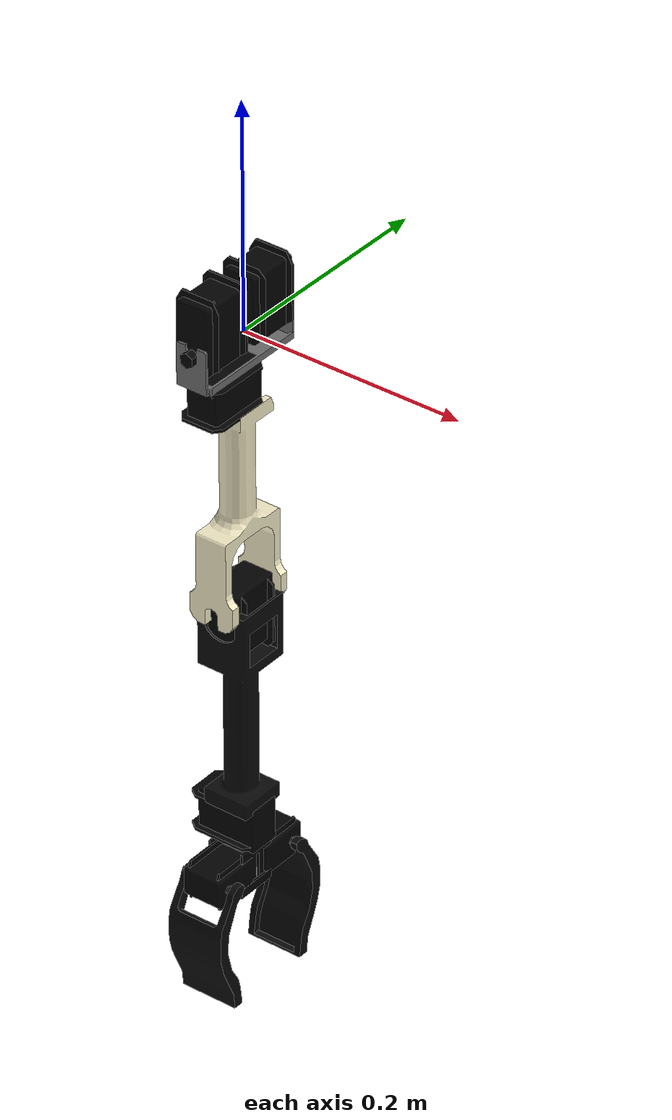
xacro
<?xml version="1.0"?>
<robot name="justina_left_arm" xmlns:xacro="http://www.ros.org/wiki/xacro">
  <!--xacro:include filename="$(find justina_description)/urdf/justina/components/justina_left_arm.gazebo"/-->

  <!-- LEFT ARM LINKS -->
  <link name="left_shoulder_link">
    <inertial>
      <origin xyz="0 -0.01 0.02" rpy = "0 0 0"/>
      <mass value="0.125"/>
      <inertia ixx="0.0015" ixy="0.0" ixz="0.0" iyy="0.002175" iyz="0.0" izz="0.003075"/>
    </inertial>

    <visual>
      <origin xyz="0 -0.01 0.02" rpy = "0 0 0"/>
      <geometry>
        <mesh filename="package://justina_description/meshes/justina/servos/Servo_Mx106-2_LowPoly.dae" scale="1 1 1"/>
      </geometry>
    </visual>
    <collision>
      <origin xyz="0 -0.01 0.02" rpy = "0 0 0"/>
      <geometry>
        <mesh filename="package://justina_description/meshes/justina/servos/Servo_Mx106-2_LowPoly.dae" scale="1 1 1"/>
      </geometry>
    </collision>
  </link>

  <link name="left_shoulder_frame">
    <inertial>
      <origin xyz="0 -0.01 0.0" rpy = "0 0 0"/>
      <mass value="0.08146"/>
      <inertia ixx="0.0000813217" ixy="0.0" ixz="0.0" iyy="0.000196" iyz="0.0" izz="0.0001282"/>
    </inertial>

    <visual>
      <origin xyz="0 -0.01 0.0" rpy="0 0 0"/>
      <geometry>
        <mesh filename="package://justina_description/meshes/justina/arm/Shoulder_Frame_LowPoly.dae" scale="1 1 1"/>
      </geometry>
    </visual>
    <collision>
      <origin xyz="0 -0.01 0.0" rpy="0 0 0"/>
      <geometry>
        <mesh filename="package://justina_description/meshes/justina/arm/Shoulder_Frame_LowPoly.dae" scale="1 1 1"/>
      </geometry>
    </collision>
  </link>

  <link name="left_arm">
    <inertial>
      <origin xyz="0 0 0" rpy = "0 0 0"/>
      <mass value="0.155"/>
      <inertia ixx="0.0015" ixy="0.0" ixz="0.0" iyy="0.002175" iyz="0.0" izz="0.003075"/>
    </inertial>

    <visual>
      <origin xyz="0 0 -0.02" rpy="0 0 1.5707"/>
      <geometry>
        <mesh filename="package://justina_description/meshes/justina/servos/Servo_Mx64_LowPoly.dae" scale="1 1 1"/>
      </geometry>
    </visual>
    <collision>
      <origin xyz="0 0 -0.02" rpy="0 0 1.5707"/>
      <geometry>
        <mesh filename="package://justina_description/meshes/justina/servos/Servo_Mx64_LowPoly.dae" scale="1 1 1"/>
      </geometry>
    </collision>

    <visual>
      <origin xyz="0 0 -0.216" rpy="0 0 1.5707"/>
      <geometry>
        <mesh filename="package://justina_description/meshes/justina/arm/Arm_LowPoly.dae" scale="1 1 1"/>
      </geometry>
    </visual>
    <collision>
      <origin xyz="0 0 -0.216" rpy="0 0 1.5707"/>
      <geometry>
        <mesh filename="package://justina_description/meshes/justina/arm/Arm_LowPoly.dae" scale="1 1 1"/>
      </geometry>
    </collision>
  </link>

  <link name="left_forearm">
    <inertial>
      <origin xyz="0 0 0" rpy = "0 0 0"/>
      <mass value="0.155"/>
      <inertia ixx="0.0015" ixy="0.0" ixz="0.0" iyy="0.002175" iyz="0.0" izz="0.003075"/>
    </inertial>

    <visual>
      <origin xyz="0 0 0" rpy="0 0 0"/>
      <geometry>
        <mesh filename="package://justina_description/meshes/justina/servos/Servo_Mx106_LowPoly.dae" scale="1 1 1"/>
      </geometry>
    </visual>
    <collision>
      <origin xyz="0 0 0" rpy="0 0 0"/>
      <geometry>
        <mesh filename="package://justina_description/meshes/justina/servos/Servo_Mx106_LowPoly.dae" scale="1 1 1"/>
      </geometry>
    </collision>

    <visual>
      <origin xyz="0 0 -0.12" rpy="0 0 0"/>
      <geometry>
        <mesh filename="package://justina_description/meshes/justina/arm/Forearm_LowPoly.dae" scale="1 1 1"/>
      </geometry>
    </visual>
    <collision>
      <origin xyz="0 0 -0.12" rpy="0 0 0"/>
      <geometry>
        <mesh filename="package://justina_description/meshes/justina/arm/Forearm_LowPoly.dae" scale="1 1 1"/>
      </geometry>
    </collision>

    <visual>
      <origin xyz="0.009 0.001 -0.21" rpy="0 0 0"/>
      <geometry>
        <mesh filename="package://justina_description/meshes/justina/servos/Servo_Mx64_LowPoly.dae" scale="1 1 1"/>
      </geometry>
    </visual>
    <collision>
      <origin xyz="0.009 0.001 -0.21" rpy="0 0 0"/>
      <geometry>
        <mesh filename="package://justina_description/meshes/justina/servos/Servo_Mx64_LowPoly.dae" scale="1 1 1"/>
      </geometry>
    </collision>
  </link>

  <link name="left_gripper_motors">
    <inertial>
      <origin xyz="0 0 0" rpy = "0 0 0"/>
      <mass value="0.155"/>
      <inertia ixx="0.0015" ixy="0.0" ixz="0.0" iyy="0.002175" iyz="0.0" izz="0.003075"/>
    </inertial>

    <visual>
      <origin xyz="0 0 0" rpy="0 0 0"/>
      <geometry>
        <mesh filename="package://justina_description/meshes/justina/servos/Servo_Mx28-2_LowPoly.dae" scale="1 1 1"/>
      </geometry>
    </visual>
    <collision>
      <origin xyz="0 0 0" rpy="0 0 0"/>
      <geometry>
        <mesh filename="package://justina_description/meshes/justina/servos/Servo_Mx28-2_LowPoly.dae" scale="1 1 1"/>
      </geometry>
    </collision>
  </link>

  <link name="left_jaw_right">
    <inertial>
      <origin xyz="0 0 0" rpy = "0 0 0"/>
      <mass value="0.155"/>
      <inertia ixx="0.0015" ixy="0.0" ixz="0.0" iyy="0.002175" iyz="0.0" izz="0.003075"/>
    </inertial>

    <visual>
      <origin xyz="0 0 0" rpy="0 0 -1.5708"/>
      <geometry>
        <mesh filename="package://justina_description/meshes/justina/arm/Gripper_Clean.dae" scale="1 1 1"/>
      </geometry>
    </visual>
    <collision>
      <origin xyz="0 0 0" rpy="0 0 -1.5708"/>
      <geometry>
        <mesh filename="package://justina_description/meshes/justina/arm/Gripper_Clean.dae" scale="1 1 1"/>
      </geometry>
    </collision>
  </link>

  <link name="left_jaw_left">
    <inertial>
      <origin xyz="0 0 0" rpy = "0 0 0"/>
      <mass value="0.155"/>
      <inertia ixx="0.0015" ixy="0.0" ixz="0.0" iyy="0.002175" iyz="0.0" izz="0.003075"/>
    </inertial>

    <visual>
      <origin xyz="0 0 0" rpy="0 0 1.5708"/>
      <geometry>
        <mesh filename="package://justina_description/meshes/justina/arm/Gripper_Clean.dae" scale="1 1 1"/>
      </geometry>
    </visual>
    <collision>
      <origin xyz="0 0 0" rpy="0 0 1.5708"/>
      <geometry>
        <mesh filename="package://justina_description/meshes/justina/arm/Gripper_Clean.dae" scale="1 1 1"/>
      </geometry>
    </collision>
  </link>

  <!-- LEFT ARM JOINTS -->
  <joint name="left_torso_shoulder" type="revolute">
    <origin xyz="0 0 0.015" rpy="0 0 0"/>
    <parent link="left_shoulder_link"/>
    <child link="left_shoulder_frame"/>
    <axis xyz="0 -1 0" />
    <dynamics damping ="0.1" />
    <limit effort="16.0" velocity="3.0" lower="-1.7" upper="1.7"/>
  </joint>

  <joint name="left_shoulder_arm_motor" type="revolute">
    <origin xyz="0 -0.009 -0.034" rpy="0 0 0"/>
    <parent link="left_shoulder_frame"/>
    <child link="left_arm"/>
    <axis xyz="0 0 -1" />
    <dynamics damping ="0.1" />
    <limit effort="16.0" velocity="3.0" lower="-1.7" upper="1.7"/>
  </joint>

  <joint name="left_elbow" type="revolute">
    <origin xyz="0 0.002 -0.216" rpy="0 0 0"/>
    <parent link="left_arm"/>
    <child link="left_forearm"/>
    <axis xyz="0 -1 0" />
    <dynamics damping ="0.1" />
    <limit effort="16.0" velocity="3.0" lower="-1.7" upper="1.7"/>
  </joint>

  <joint name="left_wrist" type="revolute">
    <origin xyz="0. 0.0 -0.25" rpy="0 0 0"/>
    <parent link="left_forearm"/>
    <child link="left_gripper_motors"/>
    <axis xyz="0 0 -1" />
    <dynamics damping ="0.1" />
    <limit effort="16.0" velocity="3.0" lower="-1.7" upper="1.7"/>
  </joint>

  <joint name="left_jaw_right_joint" type="revolute">
    <origin xyz="0.002 -0.04 0" rpy="0 0 0"/>
    <parent link="left_gripper_motors"/>
    <child link="left_jaw_right"/>
    <axis xyz="-1 0 0" />
    <dynamics damping ="0.1" />
    <limit effort="16.0" velocity="3.0" lower="-1.7" upper="1.7"/>
  </joint>

  <joint name="left_jaw_left_joint" type="revolute">
    <origin xyz="0.002 0.04 0" rpy="0 0 0"/>
    <parent link="left_gripper_motors"/>
    <child link="left_jaw_left"/>
    <axis xyz="-1 0 0" />
    <dynamics damping ="0.1" />
    <limit effort="16.0" velocity="3.0" lower="-1.7" upper="1.7"/>
  </joint>
</robot>
